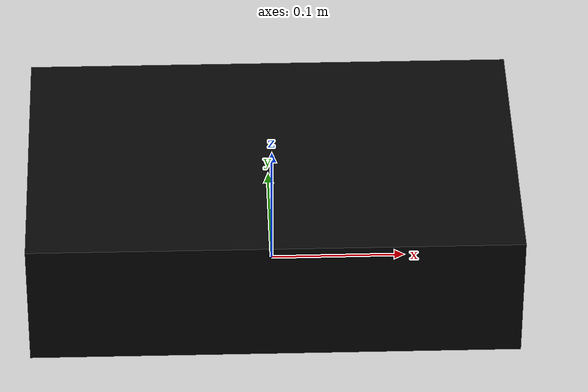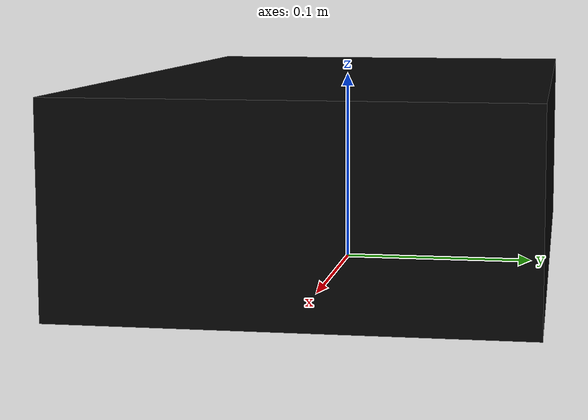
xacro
<?xml version="1.0"?>
<robot xmlns:xacro="http://www.ros.org/wiki/xacro" name="racecarneo">
  <xacro:arg name="camera_optical_frames" default="true"/>
  <xacro:arg name="sim_geometry" default="false"/>

  <link name="base_link">
    <visual>
      <origin xyz="0 0 0.05" rpy="0 0 0"/>
      <geometry><box size="0.36 0.22 0.10"/></geometry>
      <material name="racecar_black"><color rgba="0.02 0.02 0.02 1"/></material>
    </visual>
    <collision>
      <origin xyz="0 0 0.05" rpy="0 0 0"/>
      <geometry><box size="0.36 0.22 0.10"/></geometry>
    </collision>
    <inertial>
      <mass value="3.0"/>
      <origin xyz="0 0 0.05" rpy="0 0 0"/>
      <inertia ixx="0.016" ixy="0" ixz="0" iyy="0.038" iyz="0" izz="0.048"/>
    </inertial>
  </link>

  <link name="racecarneo/lidar_link"/>
  <!-- Camera body, x forward / y left / z up (RealSense camera_link). -->
  <link name="racecarneo/camera_link"/>
  <xacro:unless value="$(arg sim_geometry)">
    <joint name="lidar_joint" type="fixed">
      <parent link="base_link"/>
      <child link="racecarneo/lidar_link"/>
      <origin xyz="0.08 0 0.18" rpy="0 0 0"/>
    </joint>
    <joint name="camera_joint" type="fixed">
      <parent link="base_link"/>
      <child link="racecarneo/camera_link"/>
      <origin xyz="0.18 0 0.22" rpy="0 0 0"/>
    </joint>
  </xacro:unless>
  <xacro:if value="$(arg sim_geometry)">
    <joint name="lidar_joint" type="fixed">
      <parent link="base_link"/>
      <child link="racecarneo/lidar_link"/>
      <origin xyz="0 0 0.125" rpy="0 0 0"/>
    </joint>
    <joint name="camera_joint" type="fixed">
      <parent link="base_link"/>
      <child link="racecarneo/camera_link"/>
      <origin xyz="0.10 0 0.120" rpy="0 -0.0141 0"/>
    </joint>
  </xacro:if>

  <!-- Optical frames: z forward, x right, y down (REP-103). -->
  <xacro:if value="$(arg camera_optical_frames)">
    <link name="racecarneo/camera_color_optical_frame"/>
    <joint name="camera_color_optical_joint" type="fixed">
      <parent link="racecarneo/camera_link"/>
      <child link="racecarneo/camera_color_optical_frame"/>
      <origin xyz="0 0 0" rpy="-1.57079632679 0 -1.57079632679"/>
    </joint>

    <link name="racecarneo/camera_depth_optical_frame"/>
    <joint name="camera_depth_optical_joint" type="fixed">
      <parent link="racecarneo/camera_link"/>
      <child link="racecarneo/camera_depth_optical_frame"/>
      <origin xyz="0 0 0" rpy="-1.57079632679 0 -1.57079632679"/>
    </joint>
  </xacro:if>

  <link name="racecarneo/imu_link"/>
  <joint name="imu_joint" type="fixed">
    <parent link="base_link"/>
    <child link="racecarneo/imu_link"/>
    <origin xyz="0 0 0.08" rpy="0 0 0"/>
  </joint>
</robot>
